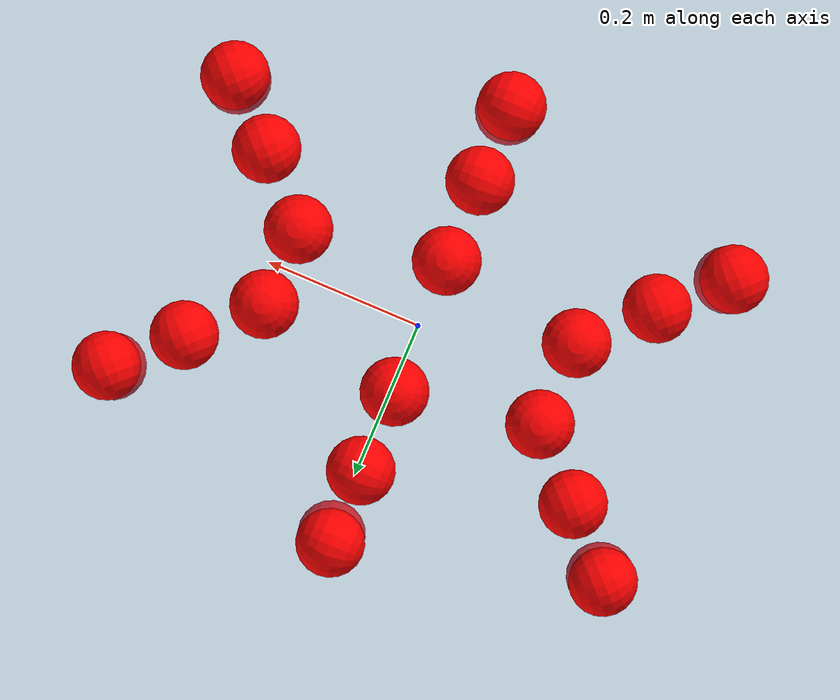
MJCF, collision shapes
<mujoco model="Golem">
  <compiler angle="radian" assetdir="assets" balanceinertia="true" inertiafromgeom="false"/>

  <option timestep="0.005" density="1.2" viscosity="2e-05"/>

  <size nkey="1"/>

  <visual>
    <quality shadowsize="8192"/>
    <map shadowclip="0.5"/>
  </visual>

  <default>
    <default class="/">
      <joint armature="0.01" damping="0.01" frictionloss="0.01"/>
      <geom contype="0" conaffinity="0" group="1" solref="-1000 -80"/>
      <site size="0.01 0.005 0.005" group="5"/>
      <general forcelimited="true" biastype="affine" gainprm="25" biasprm="0 -25 -0.5"/>
      <default class="visual">
        <geom type="mesh" group="2"/>
      </default>
      <default class="collision">
        <geom group="3"/>
      </default>
      <default class="foot">
        <geom size="0.01 0 0" condim="6" group="4" priority="1" solimp="0.015 1 0.01"/>
      </default>
      <default class="reward_collision_sphere">
        <geom group="5" rgba="1 0 0 1"/>
      </default>
    </default>
  </default>

  <asset>
    <texture type="skybox" colorspace="auto" name="//unnamed_texture_0" builtin="gradient" rgb1="0.95 0.95 0.95" rgb2="0.95 0.95 0.95" width="100" height="600"/>
    <texture type="2d" colorspace="auto" name="texplane" builtin="checker" rgb1="0.345 0.575 0.748" rgb2="0.345 0.575 0.748" markrgb="1 1 1" width="512" height="512"/>
    <material name="MatPlane" class="/" texture="texplane" texuniform="true" texrepeat="2 2" specular="0.9"/>
    <mesh name="body" class="/" file="body.stl" scale="0.001 0.001 0.001"/>
    <mesh name="coxa" class="/" file="coxa.stl" scale="0.001 0.001 0.001"/>
    <mesh name="femur" class="/" file="femur.stl" scale="0.001 0.001 0.001"/>
    <mesh name="tibia" class="/" file="tibia.stl" scale="0.001 0.001 0.001"/>
    <mesh name="tarsus" class="/" file="tarsus.stl" scale="0.001 0.001 0.001"/>
  </asset>

  <worldbody>
    <geom name="floor" class="/" size="100 100 0.125" type="plane" group="0" material="MatPlane"/>
    <light name="toplight_shadow" class="/" pos="0 0 5" dir="0.0990148 0.0990148 -0.990148" type="directional" ambient="0.04 0.04 0.04" diffuse="0.55 0.55 0.55" specular="0.12 0.12 0.12"/>
    <light name="toplight_fill" class="/" pos="0 0 5" dir="0.0990148 0.0990148 -0.990148" type="directional" castshadow="false" ambient="0.04 0.04 0.04" diffuse="0.3 0.3 0.3" specular="0.08 0.08 0.08"/>
    <body name="trunk" pos="-0.00228151 -0.00192564 -0.00105099" quat="1 -0.000340761 -0.000112836 0.000215821">
      <inertial pos="0.00266033 -0.00123782 -0.00378597" quat="0.999949 0.00494134 -0.00882566 -0.000644875" mass="4.53879" diaginertia="0.0215523 0.0065755 0.017158"/>
      <joint name="//unnamed_joint_0" type="free"/>
      <geom name="//unnamed_geom_1" class="/" pos="0 0 0.0706253" quat="1 0 0 0" type="mesh" rgba="0.9 0.9 0.9 1" mesh="body"/>
      <site name="imu" class="/" pos="0.16507 0.0113545 0.108461" size="0.0106166"/>
      <camera name="track" class="/" pos="0 -1.83822 0" quat="0.707107 0.707107 0 0" mode="trackcom"/>
      <camera name="ego_camera" class="/" pos="0.151107 0 0.110352" quat="-0.5 -0.5 0.5 0.5"/>
      <body name="coxa_RR" pos="-0.207588 -0.0791529 0.0708078" quat="0.382707 2.98404e-05 -2.63689e-05 -0.92387">
        <inertial pos="-7.91488e-05 -0.000952495 0.000395944" quat="0.999998 0.00147144 -0.000143654 -0.00105244" mass="0.23701" diaginertia="0.0204718 0.00648195 0.01579"/>
        <joint name="coxa_joint_RR" class="/" pos="0 0 0" axis="-0.000673956 -0.000223722 -1" range="-3.14382 3.12474" armature="0.0110863" damping="0.00414039" frictionloss="0.0108955"/>
        <geom name="//unnamed_geom_2" class="/" type="mesh" rgba="0.2 0.2 0.2 1" mesh="coxa"/>
        <geom name="//unnamed_geom_3" class="reward_collision_sphere" size="0.0424665" pos="-0.0348709 0 0"/>
        <body name="femur_RR" pos="0.0715862 0.00255557 -0.00229399" quat="0.500541 -0.499582 0.499801 0.500076">
          <inertial pos="-0.00256562 -0.00011558 -0.00211301" quat="0.999928 0.00166841 0.00295756 0.011486" mass="0.231333" diaginertia="0.0203473 0.00631343 0.0159506"/>
          <joint name="femur_joint_RR" class="/" pos="0 0 0" axis="-0.00370596 0.00173416 -0.999992" stiffness="0.00823332" range="-3.1292 3.14512" armature="0.0108719" damping="0.0104427" frictionloss="0.0105036"/>
          <geom name="//unnamed_geom_4" class="/" type="mesh" rgba="0.9 0.9 0.9 1" mesh="femur"/>
          <geom name="//unnamed_geom_5" class="reward_collision_sphere" size="0.0424665"/>
          <body name="tibia_RR" pos="0.00152097 -0.100318 -0.00206892" quat="0.000204844 1 -5.98007e-05 5.07251e-05">
            <inertial pos="0.000584879 -0.000146794 -0.00284223" quat="0.999955 0.0070679 -0.00494778 -0.00383995" mass="0.247182" diaginertia="0.0220038 0.00693362 0.0167173"/>
            <joint name="tibia_joint_RR" class="/" pos="0 0 0" axis="0.00978727 0.0115915 0.999885" range="-3.17931 3.14024" armature="0.0100416" damping="0.00235576" frictionloss="0.00918385"/>
            <geom name="//unnamed_geom_6" class="/" type="mesh" rgba="0.2 0.2 0.2 1" mesh="tibia"/>
            <geom name="//unnamed_geom_7" class="reward_collision_sphere" size="0.0424665"/>
            <body name="tarsus_RR" pos="0.10009 0.00144071 0.000197654" quat="1 -0.000305356 2.17608e-05 1.43908e-05">
              <inertial pos="0.0702362 0.000479397 0.000611857" quat="0.491784 0.497001 0.503796 0.507275" mass="0.238478" diaginertia="0.0208574 0.00640944 0.0164613"/>
              <joint name="tarsus_joint_RR" class="/" pos="0 0 0" axis="-0.00429591 0.00838146 0.999956" range="-3.13505 3.09464" armature="0.0103032" damping="0.0442265" frictionloss="0.010345"/>
              <geom name="//unnamed_geom_8" class="/" type="mesh" rgba="0.9 0.9 0.9 1" mesh="tarsus"/>
              <geom name="foot_1" class="foot" size="0.0108364" pos="0.130185 0 0" quat="0 -0.707107 0 0.707107"/>
              <geom name="//unnamed_geom_10" class="reward_collision_sphere" size="0.0424665"/>
              <geom name="//unnamed_geom_11" class="reward_collision_sphere" size="0.015925" pos="0.124954 0 0"/>
              <site name="foot_1" class="foot" pos="0.130185 0 0" quat="0 -0.707107 0 0.707107" size="0.0106166"/>
            </body>
          </body>
        </body>
      </body>
      <body name="coxa_RM" pos="0.00112839 -0.119323 0.073123" quat="0.706912 0.000485899 -0.00119513 -0.7073">
        <inertial pos="-0.00268108 0.000644037 -0.00267386" quat="0.999913 -0.00609669 0.00979013 -0.006405" mass="0.239812" diaginertia="0.0201446 0.00653422 0.0162086"/>
        <joint name="coxa_joint_RM" class="/" pos="0 0 0" axis="-0.00284763 0.0017938 -0.999994" range="-3.11918 3.15563" armature="0.0100915" damping="0.00917369" frictionloss="0.0101716"/>
        <geom name="//unnamed_geom_12" class="/" type="mesh" rgba="0.2 0.2 0.2 1" mesh="coxa"/>
        <geom name="//unnamed_geom_13" class="reward_collision_sphere" size="0.0424665" pos="-0.0348709 0 0"/>
        <body name="femur_RM" pos="0.0706539 0.000986804 -0.00212399" quat="0.499232 -0.500376 0.500899 0.499492">
          <inertial pos="0.0027082 -2.35165e-05 -4.4633e-05" quat="0.999921 0.00237515 -0.00393157 -0.0117014" mass="0.24243" diaginertia="0.0210952 0.00634932 0.0166282"/>
          <joint name="femur_joint_RM" class="/" pos="0 0 0" axis="0.011978 -0.00647323 -0.999907" range="-3.1301 3.14169" armature="0.0107392" damping="0.0086059" frictionloss="0.0109935"/>
          <geom name="//unnamed_geom_14" class="/" type="mesh" rgba="0.9 0.9 0.9 1" mesh="femur"/>
          <geom name="//unnamed_geom_15" class="reward_collision_sphere" size="0.0424665"/>
          <body name="tibia_RM" pos="0.00154551 -0.0982836 0.000173123" quat="-8.09979e-05 1 -5.44234e-05 0.000163546">
            <inertial pos="-0.00239226 0.00034544 -0.0019462" quat="0.999986 -0.000297925 0.00454168 0.00279654" mass="0.242605" diaginertia="0.0217439 0.00629157 0.015697"/>
            <joint name="tibia_joint_RM" class="/" pos="0 0 0" axis="0.00622787 -0.00734603 0.999954" range="-3.13477 3.12879" armature="0.0107013" damping="0.0110923" frictionloss="0.010422"/>
            <geom name="//unnamed_geom_16" class="/" type="mesh" rgba="0.2 0.2 0.2 1" mesh="tibia"/>
            <geom name="//unnamed_geom_17" class="reward_collision_sphere" size="0.0424665"/>
            <body name="tarsus_RM" pos="0.105161 0.000228585 -0.000732128" quat="1 -6.41713e-05 -5.9514e-07 8.22795e-06">
              <inertial pos="0.0709024 0.000834434 0.000515946" quat="0.503041 0.498229 0.497091 0.501616" mass="0.237156" diaginertia="0.0204376 0.00652945 0.0168726"/>
              <joint name="tarsus_joint_RM" class="/" pos="0 0 0" axis="-0.00624448 -0.0124282 0.999903" range="-3.14544 3.14239" armature="0.01048" damping="0.00411616" frictionloss="0.0104555"/>
              <geom name="//unnamed_geom_18" class="/" type="mesh" rgba="0.9 0.9 0.9 1" mesh="tarsus"/>
              <geom name="foot_2" class="foot" size="0.00964036" pos="0.130185 0 0" quat="0 -0.707107 0 0.707107"/>
              <geom name="//unnamed_geom_20" class="reward_collision_sphere" size="0.0424665"/>
              <geom name="//unnamed_geom_21" class="reward_collision_sphere" size="0.015925" pos="0.124954 0 0"/>
              <site name="foot_2" class="foot" pos="0.130185 0 0" quat="0 -0.707107 0 0.707107" size="0.0106166"/>
            </body>
          </body>
        </body>
      </body>
      <body name="coxa_RF" pos="0.206504 -0.0739504 0.069098" quat="0.923881 1.35821e-05 -1.83795e-05 -0.382679">
        <inertial pos="-0.00222976 -0.00120813 -0.000145192" quat="0.999902 -0.0062856 0.0081329 0.00950165" mass="0.246485" diaginertia="0.0218837 0.0063775 0.0165339"/>
        <joint name="coxa_joint_RF" class="/" pos="0 0 0" axis="0.00402047 0.00207303 -0.99999" range="-3.15464 3.1399" armature="0.0118965" damping="0.01215" frictionloss="0.0106489"/>
        <geom name="//unnamed_geom_22" class="/" type="mesh" rgba="0.2 0.2 0.2 1" mesh="coxa"/>
        <geom name="//unnamed_geom_23" class="reward_collision_sphere" size="0.0424665" pos="-0.0348709 0 0"/>
        <body name="femur_RF" pos="0.0701118 -0.000539006 0.00214024" quat="0.499962 -0.499948 0.500203 0.499887">
          <inertial pos="0.00174931 0.00245531 0.0016332" quat="0.999997 -0.00204108 0.000819594 0.000673436" mass="0.231346" diaginertia="0.0217212 0.00630569 0.0164737"/>
          <joint name="femur_joint_RF" class="/" pos="0 0 0" axis="0.00876547 0.0072031 -0.999936" range="-3.16246 3.09065" armature="0.01055" damping="0.00454732" frictionloss="0.0109881"/>
          <geom name="//unnamed_geom_24" class="/" type="mesh" rgba="0.9 0.9 0.9 1" mesh="femur"/>
          <geom name="//unnamed_geom_25" class="reward_collision_sphere" size="0.0424665"/>
          <body name="tibia_RF" pos="-0.000598001 -0.0968057 0.00212232" quat="0.000162932 1 2.55064e-05 -0.000134133">
            <inertial pos="-0.00217437 -0.00243942 0.00252127" quat="0.999959 0.00731781 0.00312933 -0.00424277" mass="0.246538" diaginertia="0.0211268 0.00651724 0.0164464"/>
            <joint name="tibia_joint_RF" class="/" pos="0 0 0" axis="0.00263992 0.00643168 0.999976" range="-3.1389 3.08451" armature="0.0111696" damping="0.00962544" frictionloss="0.0106191"/>
            <geom name="//unnamed_geom_26" class="/" type="mesh" rgba="0.2 0.2 0.2 1" mesh="tibia"/>
            <geom name="//unnamed_geom_27" class="reward_collision_sphere" size="0.0424665"/>
            <body name="tarsus_RF" pos="0.103529 0.0026072 -0.00232469" quat="0.999999 0.000499828 -0.000974772 0.000584689">
              <inertial pos="0.0713788 2.30422e-05 -0.000294692" quat="0.501465 0.498982 0.502726 0.496807" mass="0.240712" diaginertia="0.0215461 0.00678089 0.0158608"/>
              <joint name="tarsus_joint_RF" class="/" pos="0 0 0" axis="-0.000472662 -0.000570343 1" range="-3.17127 3.13349" armature="0.0121125" damping="0.0077191" frictionloss="0.0118008"/>
              <geom name="//unnamed_geom_28" class="/" type="mesh" rgba="0.9 0.9 0.9 1" mesh="tarsus"/>
              <geom name="foot_3" class="foot" size="0.0116713" pos="0.130185 0 0" quat="0 -0.707107 0 0.707107"/>
              <geom name="//unnamed_geom_30" class="reward_collision_sphere" size="0.0424665"/>
              <geom name="//unnamed_geom_31" class="reward_collision_sphere" size="0.015925" pos="0.124954 0 0"/>
              <site name="foot_3" class="foot" pos="0.130185 0 0" quat="0 -0.707107 0 0.707107" size="0.0106166"/>
            </body>
          </body>
        </body>
      </body>
      <body name="coxa_LR" pos="-0.205499 0.0780178 0.0683605" quat="0.381827 0.000750271 0.000545005 0.924233">
        <inertial pos="0.00111817 -0.00101015 -0.0021345" quat="0.999909 0.00467172 0.0116596 0.00500185" mass="0.225503" diaginertia="0.0207705 0.00642589 0.0157735"/>
        <joint name="coxa_joint_LR" class="/" pos="0 0 0" axis="-0.000993727 0.00342728 -0.999994" stiffness="0.0085089" range="-3.13126 3.18601" armature="0.0120314" damping="0.00734997" frictionloss="0.00935993"/>
        <geom name="//unnamed_geom_32" class="/" type="mesh" rgba="0.2 0.2 0.2 1" mesh="coxa"/>
        <geom name="//unnamed_geom_33" class="reward_collision_sphere" size="0.0424665" pos="-0.0348709 0 0"/>
        <body name="femur_LR" pos="0.0702714 0.000806127 -0.0015907" quat="0.500374 -0.499878 0.499812 0.499936">
          <inertial pos="-0.000611757 0.000521936 0.000177988" quat="0.99996 -0.00325987 0.00477261 0.00686791" mass="0.234181" diaginertia="0.0205937 0.00659679 0.0159175"/>
          <joint name="femur_joint_LR" class="/" pos="0 0 0" axis="0.000220582 -0.000910601 1" range="-3.14284 3.08525" armature="0.0117886" damping="0.000144764" frictionloss="0.0108055"/>
          <geom name="//unnamed_geom_34" class="/" type="mesh" rgba="0.9 0.9 0.9 1" mesh="femur"/>
          <geom name="//unnamed_geom_35" class="reward_collision_sphere" size="0.0424665"/>
          <body name="tibia_LR" pos="-0.00214389 -0.100903 -0.0016041" quat="-7.02276e-05 0.999999 -0.000406459 0.00133295">
            <inertial pos="0.00222167 0.00266211 0.000422866" quat="0.999906 0.0105959 -0.00217902 0.00848151" mass="0.232546" diaginertia="0.0219099 0.00681356 0.015955"/>
            <joint name="tibia_joint_LR" class="/" pos="0 0 0" axis="-0.00312149 -0.00133943 -0.999994" stiffness="0.00432429" range="-3.14735 3.14278" armature="0.0105512" damping="0.00980271" frictionloss="0.0115485"/>
            <geom name="//unnamed_geom_36" class="/" type="mesh" rgba="0.2 0.2 0.2 1" mesh="tibia"/>
            <geom name="//unnamed_geom_37" class="reward_collision_sphere" size="0.0424665"/>
            <body name="tarsus_LR" pos="0.105199 0.00133479 -0.00109722" quat="1 0.000256728 0.000211212 -0.000275591">
              <inertial pos="0.0689479 -0.00180326 -9.18404e-05" quat="0.497878 0.498734 0.504629 0.498731" mass="0.235675" diaginertia="0.0209585 0.00641572 0.0159799"/>
              <joint name="tarsus_joint_LR" class="/" pos="0 0 0" axis="-0.000257404 2.29038e-05 -1" range="-3.11873 3.16059" armature="0.00922929" damping="0.0271253" frictionloss="0.0105666"/>
              <geom name="//unnamed_geom_38" class="/" type="mesh" rgba="0.9 0.9 0.9 1" mesh="tarsus"/>
              <geom name="foot_4" class="foot" size="0.0103288" pos="0.130185 0 0" quat="0.707107 0 -0.707107 0"/>
              <geom name="//unnamed_geom_40" class="reward_collision_sphere" size="0.0424665"/>
              <geom name="//unnamed_geom_41" class="reward_collision_sphere" size="0.015925" pos="0.124954 0 0"/>
              <site name="foot_4" class="foot" pos="0.130185 0 0" quat="0.707107 0 -0.707107 0" size="0.0106166"/>
            </body>
          </body>
        </body>
      </body>
      <body name="coxa_LM" pos="-0.00281071 0.121159 0.0719253" quat="0.706508 -0.000179506 0.000319371 0.707705">
        <inertial pos="0.00303617 -0.00274061 -0.00118765" quat="0.999903 -0.00464177 0.0036915 0.0126346" mass="0.242647" diaginertia="0.0208754 0.00659679 0.0165634"/>
        <joint name="coxa_joint_LM" class="/" pos="0 0 0" axis="0.00326329 0.00148195 -0.999994" stiffness="0.00757657" range="-3.15054 3.14476" armature="0.0116541" damping="0" frictionloss="0.0105331"/>
        <geom name="//unnamed_geom_42" class="/" type="mesh" rgba="0.2 0.2 0.2 1" mesh="coxa"/>
        <geom name="//unnamed_geom_43" class="reward_collision_sphere" size="0.0424665" pos="-0.0348709 0 0"/>
        <body name="femur_LM" pos="0.0693982 -0.000225692 -0.00235643" quat="0.498986 -0.500344 0.500634 0.500035">
          <inertial pos="-0.00274481 -0.000523607 -0.00272769" quat="0.999954 -0.00493579 -0.00766929 0.00280875" mass="0.255365" diaginertia="0.0221382 0.00668734 0.0168893"/>
          <joint name="femur_joint_LM" class="/" pos="0 0 0" axis="-0.000208345 1.36369e-05 1" range="-3.09661 3.12866" armature="0.0119084" damping="0" frictionloss="0.0107168"/>
          <geom name="//unnamed_geom_44" class="/" type="mesh" rgba="0.9 0.9 0.9 1" mesh="femur"/>
          <geom name="//unnamed_geom_45" class="reward_collision_sphere" size="0.0424665"/>
          <body name="tibia_LM" pos="0.00249573 -0.0952012 -3.14862e-06" quat="-5.27181e-05 1 8.67419e-05 6.31851e-05">
            <inertial pos="0.00262529 0.00156893 0.00207505" quat="0.999999 -0.000226675 0.000909903 0.00138838" mass="0.239438" diaginertia="0.0209419 0.00633096 0.0168949"/>
            <joint name="tibia_joint_LM" class="/" pos="0 0 0" axis="0.00760524 -0.00070983 -0.999971" range="-3.14941 3.14358" armature="0.0118688" damping="0" frictionloss="0.00919045"/>
            <geom name="//unnamed_geom_46" class="/" type="mesh" rgba="0.2 0.2 0.2 1" mesh="tibia"/>
            <geom name="//unnamed_geom_47" class="reward_collision_sphere" size="0.0424665"/>
            <body name="tarsus_LM" pos="0.101472 -0.00281763 0.00239382" quat="0.999999 -0.000657831 0.000101373 -0.00100966">
              <inertial pos="0.0699412 0.000799093 0.0021331" quat="0.497586 0.502313 0.498629 0.501456" mass="0.246416" diaginertia="0.0211411 0.00692079 0.0167145"/>
              <joint name="tarsus_joint_LM" class="/" pos="0 0 0" axis="0.0113317 0.00529999 -0.999922" stiffness="0.0111659" range="-3.17638 3.11847" armature="0.0107115" damping="0.013733" frictionloss="0.010442"/>
              <geom name="//unnamed_geom_48" class="/" type="mesh" rgba="0.9 0.9 0.9 1" mesh="tarsus"/>
              <geom name="foot_5" class="foot" size="0.010661" pos="0.130185 0 0" quat="0.707107 0 -0.707107 0"/>
              <geom name="//unnamed_geom_50" class="reward_collision_sphere" size="0.0424665"/>
              <geom name="//unnamed_geom_51" class="reward_collision_sphere" size="0.015925" pos="0.124954 0 0"/>
              <site name="foot_5" class="foot" pos="0.130185 0 0" quat="0.707107 0 -0.707107 0" size="0.0106166"/>
            </body>
          </body>
        </body>
      </body>
      <body name="coxa_LF" pos="0.209027 0.0754398 0.069785" quat="0.923731 -0.000983072 -0.000976679 0.383039">
        <inertial pos="0.000522241 0.00249503 -0.000504555" quat="1 -0.000478906 2.92003e-05 0.000241041" mass="0.237873" diaginertia="0.0212792 0.00697988 0.0169525"/>
        <joint name="coxa_joint_LF" class="/" pos="0 0 0" axis="0.0026275 0.0148639 -0.999886" range="-3.14582 3.12782" armature="0.0115948" damping="0.0107989" frictionloss="0.0104069"/>
        <geom name="//unnamed_geom_52" class="/" type="mesh" rgba="0.2 0.2 0.2 1" mesh="coxa"/>
        <geom name="//unnamed_geom_53" class="reward_collision_sphere" size="0.0424665" pos="-0.0348709 0 0"/>
        <body name="femur_LF" pos="0.0692385 -0.00150433 -0.00312888" quat="0.499587 -0.501222 0.499533 0.499656">
          <inertial pos="0.00244761 0.000886358 0.00218537" quat="0.999902 -0.00248919 0.000214344 0.0137422" mass="0.236641" diaginertia="0.0206194 0.00671741 0.0164454"/>
          <joint name="femur_joint_LF" class="/" pos="0 0 0" axis="0.0117988 -0.00114485 0.99993" range="-3.14982 3.08898" armature="0.010448" damping="0" frictionloss="0.0102048"/>
          <geom name="//unnamed_geom_54" class="/" type="mesh" rgba="0.9 0.9 0.9 1" mesh="femur"/>
          <geom name="//unnamed_geom_55" class="reward_collision_sphere" size="0.0424665"/>
          <body name="tibia_LF" pos="-0.000922402 -0.101507 -0.00124266" quat="0.000992381 0.999999 0.000692528 -0.00057471">
            <inertial pos="-0.000802493 -0.00263025 -0.000236571" quat="0.999986 0.00280808 -0.00430434 0.00144812" mass="0.23873" diaginertia="0.0208216 0.0065715 0.0164169"/>
            <joint name="tibia_joint_LF" class="/" pos="0 0 0" axis="0.00971586 0.0119152 -0.999882" range="-3.19593 3.13266" armature="0.0118284" damping="0.00382954" frictionloss="0.0120602"/>
            <geom name="//unnamed_geom_56" class="/" type="mesh" rgba="0.2 0.2 0.2 1" mesh="tibia"/>
            <geom name="//unnamed_geom_57" class="reward_collision_sphere" size="0.0424665"/>
            <body name="tarsus_LF" pos="0.103567 0.00262627 -0.00175803" quat="1 -0.000761288 0.000297802 -0.000560075">
              <inertial pos="0.0689059 0.000766191 -0.000336031" quat="0.497612 0.501757 0.500761 0.499861" mass="0.238596" diaginertia="0.0208098 0.00648284 0.0156567"/>
              <joint name="tarsus_joint_LF" class="/" pos="0 0 0" axis="0.0089745 0.00850598 -0.999924" stiffness="0.0308004" range="-3.13653 3.0829" armature="0.0106583" damping="0.0271305" frictionloss="0.0113736"/>
              <geom name="//unnamed_geom_58" class="/" type="mesh" rgba="0.9 0.9 0.9 1" mesh="tarsus"/>
              <geom name="foot_6" class="foot" size="0.00947686" pos="0.130185 0 0" quat="0.707107 0 -0.707107 0"/>
              <geom name="//unnamed_geom_60" class="reward_collision_sphere" size="0.0424665"/>
              <geom name="//unnamed_geom_61" class="reward_collision_sphere" size="0.015925" pos="0.124954 0 0"/>
              <site name="foot_6" class="foot" pos="0.130185 0 0" quat="0.707107 0 -0.707107 0" size="0.0106166"/>
            </body>
          </body>
        </body>
      </body>
    </body>
  </worldbody>

  <contact>
    <pair class="/" geom1="floor" geom2="foot_1" name="//unnamed_contact_0"/>
    <pair class="/" geom1="floor" geom2="foot_2" name="//unnamed_contact_1"/>
    <pair class="/" geom1="floor" geom2="foot_3" name="//unnamed_contact_2"/>
    <pair class="/" geom1="floor" geom2="foot_4" name="//unnamed_contact_3"/>
    <pair class="/" geom1="floor" geom2="foot_5" name="//unnamed_contact_4"/>
    <pair class="/" geom1="floor" geom2="foot_6" name="//unnamed_contact_5"/>
  </contact>

  <actuator>
    <general name="coxa_joint_RR" class="/" joint="coxa_joint_RR" forcerange="-6.99932 6.99932" gainprm="25.0898" biasprm="0 -25.0898 -0.518413"/>
    <general name="femur_joint_RR" class="/" joint="femur_joint_RR" forcerange="-8.08495 8.08495" gainprm="25.0898" biasprm="0 -25.0898 -0.518413"/>
    <general name="tibia_joint_RR" class="/" joint="tibia_joint_RR" forcerange="-7.08814 7.08814" gainprm="25.0898" biasprm="0 -25.0898 -0.518413"/>
    <general name="tarsus_joint_RR" class="/" joint="tarsus_joint_RR" forcerange="-8.24377 8.24377" gainprm="25.0898" biasprm="0 -25.0898 -0.518413"/>
    <general name="coxa_joint_RM" class="/" joint="coxa_joint_RM" forcerange="-7.72654 7.72654" gainprm="25.0898" biasprm="0 -25.0898 -0.518413"/>
    <general name="femur_joint_RM" class="/" joint="femur_joint_RM" forcerange="-7.7828 7.7828" gainprm="25.0898" biasprm="0 -25.0898 -0.518413"/>
    <general name="tibia_joint_RM" class="/" joint="tibia_joint_RM" forcerange="-6.94863 6.94863" gainprm="25.0898" biasprm="0 -25.0898 -0.518413"/>
    <general name="tarsus_joint_RM" class="/" joint="tarsus_joint_RM" forcerange="-8.44995 8.44995" gainprm="25.0898" biasprm="0 -25.0898 -0.518413"/>
    <general name="coxa_joint_RF" class="/" joint="coxa_joint_RF" forcerange="-7.47791 7.47791" gainprm="25.0898" biasprm="0 -25.0898 -0.518413"/>
    <general name="femur_joint_RF" class="/" joint="femur_joint_RF" forcerange="-7.63706 7.63706" gainprm="25.0898" biasprm="0 -25.0898 -0.518413"/>
    <general name="tibia_joint_RF" class="/" joint="tibia_joint_RF" forcerange="-8.52325 8.52325" gainprm="25.0898" biasprm="0 -25.0898 -0.518413"/>
    <general name="tarsus_joint_RF" class="/" joint="tarsus_joint_RF" forcerange="-8.03813 8.03813" gainprm="25.0898" biasprm="0 -25.0898 -0.518413"/>
    <general name="coxa_joint_LR" class="/" joint="coxa_joint_LR" forcerange="-7.81033 7.81033" gainprm="25.0898" biasprm="0 -25.0898 -0.518413"/>
    <general name="femur_joint_LR" class="/" joint="femur_joint_LR" forcerange="-6.94126 6.94126" gainprm="25.0898" biasprm="0 -25.0898 -0.518413"/>
    <general name="tibia_joint_LR" class="/" joint="tibia_joint_LR" forcerange="-7.48312 7.48312" gainprm="25.0898" biasprm="0 -25.0898 -0.518413"/>
    <general name="tarsus_joint_LR" class="/" joint="tarsus_joint_LR" forcerange="-7.06424 7.06424" gainprm="25.0898" biasprm="0 -25.0898 -0.518413"/>
    <general name="coxa_joint_LM" class="/" joint="coxa_joint_LM" forcerange="-7.48157 7.48157" gainprm="25.0898" biasprm="0 -25.0898 -0.518413"/>
    <general name="femur_joint_LM" class="/" joint="femur_joint_LM" forcerange="-7.89619 7.89619" gainprm="25.0898" biasprm="0 -25.0898 -0.518413"/>
    <general name="tibia_joint_LM" class="/" joint="tibia_joint_LM" forcerange="-6.99507 6.99507" gainprm="25.0898" biasprm="0 -25.0898 -0.518413"/>
    <general name="tarsus_joint_LM" class="/" joint="tarsus_joint_LM" forcerange="-8.03305 8.03305" gainprm="25.0898" biasprm="0 -25.0898 -0.518413"/>
    <general name="coxa_joint_LF" class="/" joint="coxa_joint_LF" forcerange="-7.68126 7.68126" gainprm="25.0898" biasprm="0 -25.0898 -0.518413"/>
    <general name="femur_joint_LF" class="/" joint="femur_joint_LF" forcerange="-7.54728 7.54728" gainprm="25.0898" biasprm="0 -25.0898 -0.518413"/>
    <general name="tibia_joint_LF" class="/" joint="tibia_joint_LF" forcerange="-8.44747 8.44747" gainprm="25.0898" biasprm="0 -25.0898 -0.518413"/>
    <general name="tarsus_joint_LF" class="/" joint="tarsus_joint_LF" forcerange="-7.51427 7.51427" gainprm="25.0898" biasprm="0 -25.0898 -0.518413"/>
  </actuator>

  <sensor>
    <gyro site="imu" name="imu_angular_velocity"/>
    <velocimeter site="imu" name="imu_linear_velocity"/>
    <framelinvel objtype="site" objname="foot_1" name="foot_1_global_linear_velocity"/>
    <framelinvel objtype="site" objname="foot_2" name="foot_2_global_linear_velocity"/>
    <framelinvel objtype="site" objname="foot_3" name="foot_3_global_linear_velocity"/>
    <framelinvel objtype="site" objname="foot_4" name="foot_4_global_linear_velocity"/>
    <framelinvel objtype="site" objname="foot_5" name="foot_5_global_linear_velocity"/>
    <framelinvel objtype="site" objname="foot_6" name="foot_6_global_linear_velocity"/>
  </sensor>

  <keyframe>
    <key name="home" qpos="0 0 0.1457 1 0 0 0 0 0 0 0 0 0 0 0 0 0 0 0 0 0 0 0 0 0 0 0 0 0 0 0"/>
  </keyframe>
</mujoco>
